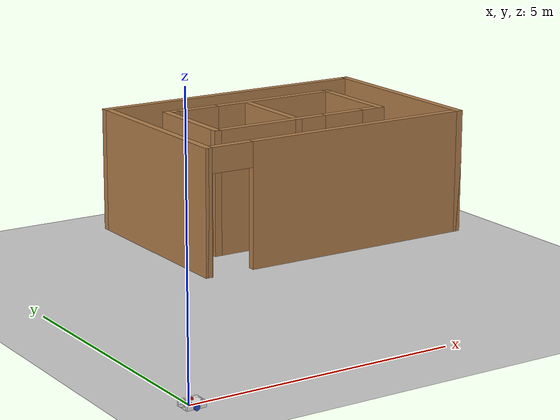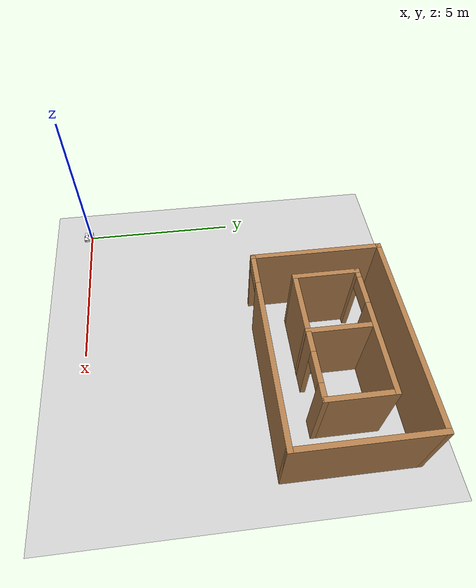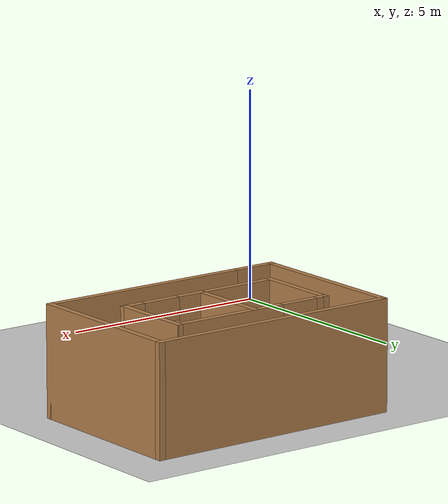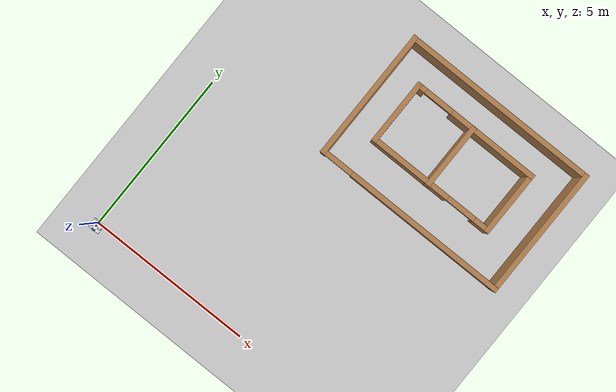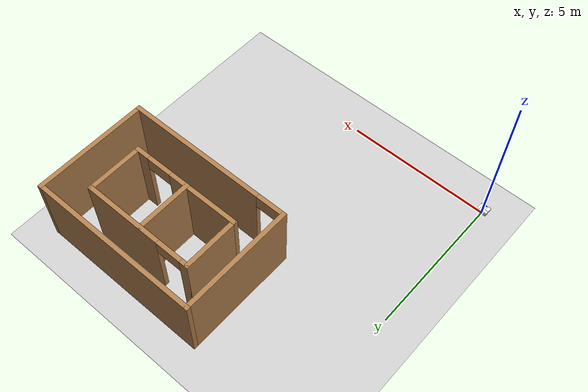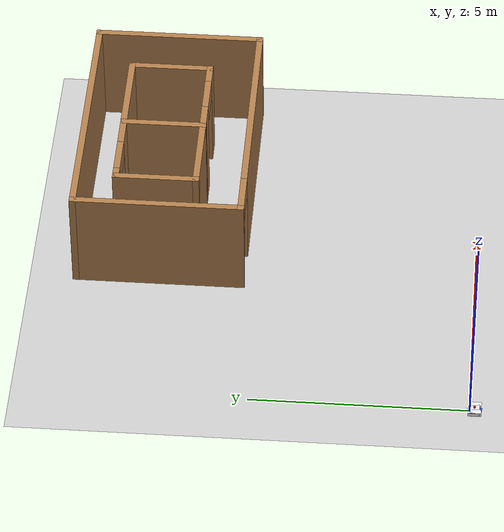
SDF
<sdf version="1.7">
 <world name="default">
  <light name="sun" type="directional">
   <pose>0 0 10 0 -0 0</pose>
   <diffuse>0.8 0.8 0.8 1</diffuse>
   <specular>0.2 0.2 0.2 1</specular>
   <attenuation>
    <range>1000</range>
    <constant>0.9</constant>
    <linear>0.01</linear>
    <quadratic>0.001</quadratic>
   </attenuation>
   <direction>-0.5 0.1 -0.9</direction>
   <spot><inner_angle>0</inner_angle><outer_angle>0</outer_angle><falloff>0</falloff></spot>
  </light>
  <model name="ground_plane">
   <static>1</static>
   <link name="link">
    <collision name="collision">
     <geometry><plane><normal>0 0 1</normal><size>100 100</size></plane></geometry>
     <surface>
      <contact><collide_bitmask>65535</collide_bitmask></contact>
      <friction><ode><mu>100</mu><mu2>50</mu2></ode></friction>
     </surface>
    </collision>
    <visual name="visual">
     <cast_shadows>0</cast_shadows>
     <geometry><plane><normal>0 0 1</normal><size>100 100</size></plane></geometry>
     <material>
      <script><uri>file://media/materials/scripts/gazebo.material</uri><name>Gazebo/Grey</name></script>
     </material>
    </visual>
   </link>
  </model>
  <gravity>0 0 -9.8</gravity>
  <magnetic_field>6e-06 2.3e-05 -4.2e-05</magnetic_field>
  <atmosphere type="adiabatic"/>
  <physics type="ode">
   <max_step_size>0.001</max_step_size>
   <real_time_factor>1</real_time_factor>
   <real_time_update_rate>1000</real_time_update_rate>
  </physics>
  <scene><ambient>0.4 0.4 0.4 1</ambient><background>0.7 0.7 0.7 1</background><shadows>1</shadows></scene>
  <audio><device>default</device></audio>
  <spherical_coordinates>
   <surface_model>EARTH_WGS84</surface_model>
   <latitude_deg>0</latitude_deg>
   <longitude_deg>0</longitude_deg>
   <elevation>0</elevation>
   <heading_deg>0</heading_deg>
  </spherical_coordinates>
  <model name="real">
   <pose>6.54997 7.85739 0 0 -0 0</pose>
   <link name="Wall_1">
    <collision name="Wall_1_Collision">
     <geometry><box><size>4 0.15 2.5</size></box></geometry>
     <pose>0 0 1.25 0 -0 0</pose>
    </collision>
    <visual name="Wall_1_Visual">
     <pose>0 0 1.25 0 -0 0</pose>
     <geometry><box><size>4 0.15 2.5</size></box></geometry>
     <material>
      <script><uri>file://media/materials/scripts/gazebo.material</uri><name>Gazebo/Wood</name></script>
      <ambient>1 1 1 1</ambient>
     </material>
     <meta><layer>0</layer></meta>
    </visual>
    <pose>-2.925 -0.5125 0 0 -0 -1.5708</pose>
   </link>
   <link name="Wall_10">
    <collision name="Wall_10_Collision">
     <geometry><box><size>2 0.15 2.5</size></box></geometry>
     <pose>0 0 1.25 0 -0 0</pose>
    </collision>
    <visual name="Wall_10_Visual">
     <pose>0 0 1.25 0 -0 0</pose>
     <geometry><box><size>2 0.15 2.5</size></box></geometry>
     <material>
      <script><uri>file://media/materials/scripts/gazebo.material</uri><name>Gazebo/Wood</name></script>
      <ambient>1 1 1 1</ambient>
     </material>
     <meta><layer>0</layer></meta>
    </visual>
    <pose>-2.055 -0.4125 0 0 -0 1.5708</pose>
   </link>
   <link name="Wall_13">
    <collision name="Wall_13_Collision">
     <geometry><box><size>2 0.15 2.5</size></box></geometry>
     <pose>0 0 1.25 0 -0 0</pose>
    </collision>
    <visual name="Wall_13_Visual">
     <pose>0 0 1.25 0 -0 0</pose>
     <geometry><box><size>2 0.15 2.5</size></box></geometry>
     <material>
      <script><uri>file://media/materials/scripts/gazebo.material</uri><name>Gazebo/Wood</name></script>
      <ambient>1 1 1 1</ambient>
     </material>
     <meta><layer>0</layer></meta>
    </visual>
    <pose>-0.202392 -0.418368 0 0 -0 -1.5708</pose>
   </link>
   <link name="Wall_2">
    <pose>0 -2.4375 0 0 -0 0</pose>
    <visual name="Wall_2_Visual_0">
     <pose>-2.93107 0 1.25 0 -0 0</pose>
     <geometry><box><size>0.137861 0.15 2.5</size></box></geometry>
     <material>
      <script><uri>file://media/materials/scripts/gazebo.material</uri><name>Gazebo/Wood</name></script>
      <ambient>1 1 1 1</ambient>
     </material>
     <meta><layer>0</layer></meta>
    </visual>
    <collision name="Wall_2_Collision_0">
     <geometry><box><size>0.137861 0.15 2.5</size></box></geometry>
     <pose>-2.93107 0 1.25 0 -0 0</pose>
    </collision>
    <visual name="Wall_2_Visual_1">
     <pose>0.518931 0 1.25 0 -0 0</pose>
     <geometry><box><size>4.96214 0.15 2.5</size></box></geometry>
     <material>
      <script><uri>file://media/materials/scripts/gazebo.material</uri><name>Gazebo/Wood</name></script>
      <ambient>1 1 1 1</ambient>
     </material>
     <meta><layer>0</layer></meta>
    </visual>
    <collision name="Wall_2_Collision_1">
     <geometry><box><size>4.96214 0.15 2.5</size></box></geometry>
     <pose>0.518931 0 1.25 0 -0 0</pose>
    </collision>
    <visual name="Wall_2_Visual_2">
     <pose>-2.41214 0 2.25 0 -0 0</pose>
     <geometry><box><size>0.9 0.15 0.5</size></box></geometry>
     <material>
      <script><uri>file://media/materials/scripts/gazebo.material</uri><name>Gazebo/Wood</name></script>
      <ambient>1 1 1 1</ambient>
     </material>
     <meta><layer>0</layer></meta>
    </visual>
    <collision name="Wall_2_Collision_2">
     <geometry><box><size>0.9 0.15 0.5</size></box></geometry>
     <pose>-2.41214 0 2.25 0 -0 0</pose>
    </collision>
   </link>
   <link name="Wall_3">
    <collision name="Wall_3_Collision">
     <geometry><box><size>4 0.15 2.5</size></box></geometry>
     <pose>0 0 1.25 0 -0 0</pose>
    </collision>
    <visual name="Wall_3_Visual">
     <pose>0 0 1.25 0 -0 0</pose>
     <geometry><box><size>4 0.15 2.5</size></box></geometry>
     <material>
      <script><uri>file://media/materials/scripts/gazebo.material</uri><name>Gazebo/Wood</name></script>
      <ambient>1 1 1 1</ambient>
     </material>
     <meta><layer>0</layer></meta>
    </visual>
    <pose>2.925 -0.5125 0 0 -0 1.5708</pose>
   </link>
   <link name="Wall_4">
    <collision name="Wall_4_Collision">
     <geometry><box><size>6 0.15 2.5</size></box></geometry>
     <pose>0 0 1.25 0 -0 0</pose>
    </collision>
    <visual name="Wall_4_Visual">
     <pose>0 0 1.25 0 -0 0</pose>
     <geometry><box><size>6 0.15 2.5</size></box></geometry>
     <material>
      <script><uri>file://media/materials/scripts/gazebo.material</uri><name>Gazebo/Wood</name></script>
      <ambient>1 1 1 1</ambient>
     </material>
     <meta><layer>0</layer></meta>
    </visual>
    <pose>0 1.4125 0 0 -0 3.14159</pose>
   </link>
   <link name="Wall_7">
    <pose>-0.13 0.5125 0 0 -0 0</pose>
    <visual name="Wall_7_Visual_0">
     <pose>-1.84107 0 1.25 0 -0 0</pose>
     <geometry><box><size>0.317861 0.15 2.5</size></box></geometry>
     <material>
      <script><uri>file://media/materials/scripts/gazebo.material</uri><name>Gazebo/Wood</name></script>
      <ambient>1 1 1 1</ambient>
     </material>
     <meta><layer>0</layer></meta>
    </visual>
    <collision name="Wall_7_Collision_0">
     <geometry><box><size>0.317861 0.15 2.5</size></box></geometry>
     <pose>-1.84107 0 1.25 0 -0 0</pose>
    </collision>
    <visual name="Wall_7_Visual_1">
     <pose>0.608931 0 1.25 0 -0 0</pose>
     <geometry><box><size>2.78214 0.15 2.5</size></box></geometry>
     <material>
      <script><uri>file://media/materials/scripts/gazebo.material</uri><name>Gazebo/Wood</name></script>
      <ambient>1 1 1 1</ambient>
     </material>
     <meta><layer>0</layer></meta>
    </visual>
    <collision name="Wall_7_Collision_1">
     <geometry><box><size>2.78214 0.15 2.5</size></box></geometry>
     <pose>0.608931 0 1.25 0 -0 0</pose>
    </collision>
    <visual name="Wall_7_Visual_2">
     <pose>-1.23214 0 2.25 0 -0 0</pose>
     <geometry><box><size>0.9 0.15 0.5</size></box></geometry>
     <material>
      <script><uri>file://media/materials/scripts/gazebo.material</uri><name>Gazebo/Wood</name></script>
      <ambient>1 1 1 1</ambient>
     </material>
     <meta><layer>0</layer></meta>
    </visual>
    <collision name="Wall_7_Collision_2">
     <geometry><box><size>0.9 0.15 0.5</size></box></geometry>
     <pose>-1.23214 0 2.25 0 -0 0</pose>
    </collision>
   </link>
   <link name="Wall_8">
    <collision name="Wall_8_Collision">
     <geometry><box><size>2 0.15 2.5</size></box></geometry>
     <pose>0 0 1.25 0 -0 0</pose>
    </collision>
    <visual name="Wall_8_Visual">
     <pose>0 0 1.25 0 -0 0</pose>
     <geometry><box><size>2 0.15 2.5</size></box></geometry>
     <material>
      <script><uri>file://media/materials/scripts/gazebo.material</uri><name>Gazebo/Wood</name></script>
      <ambient>1 1 1 1</ambient>
     </material>
     <meta><layer>0</layer></meta>
    </visual>
    <pose>1.795 -0.4125 0 0 -0 -1.5708</pose>
   </link>
   <link name="Wall_9">
    <pose>-0.13 -1.3375 0 0 -0 3.14159</pose>
    <visual name="Wall_9_Visual_0">
     <pose>-1.73393 0 1.25 0 -0 0</pose>
     <geometry><box><size>0.532139 0.15 2.5</size></box></geometry>
     <material>
      <script><uri>file://media/materials/scripts/gazebo.material</uri><name>Gazebo/Wood</name></script>
      <ambient>1 1 1 1</ambient>
     </material>
     <meta><layer>0</layer></meta>
    </visual>
    <collision name="Wall_9_Collision_0">
     <geometry><box><size>0.532139 0.15 2.5</size></box></geometry>
     <pose>-1.73393 0 1.25 0 -0 0</pose>
    </collision>
    <visual name="Wall_9_Visual_1">
     <pose>0.716069 0 1.25 0 -0 0</pose>
     <geometry><box><size>2.56786 0.15 2.5</size></box></geometry>
     <material>
      <script><uri>file://media/materials/scripts/gazebo.material</uri><name>Gazebo/Wood</name></script>
      <ambient>1 1 1 1</ambient>
     </material>
     <meta><layer>0</layer></meta>
    </visual>
    <collision name="Wall_9_Collision_1">
     <geometry><box><size>2.56786 0.15 2.5</size></box></geometry>
     <pose>0.716069 0 1.25 0 -0 0</pose>
    </collision>
    <visual name="Wall_9_Visual_2">
     <pose>-1.01786 0 2.25 0 -0 0</pose>
     <geometry><box><size>0.9 0.15 0.5</size></box></geometry>
     <material>
      <script><uri>file://media/materials/scripts/gazebo.material</uri><name>Gazebo/Wood</name></script>
      <ambient>1 1 1 1</ambient>
     </material>
     <meta><layer>0</layer></meta>
    </visual>
    <collision name="Wall_9_Collision_2">
     <geometry><box><size>0.9 0.15 0.5</size></box></geometry>
     <pose>-1.01786 0 2.25 0 -0 0</pose>
    </collision>
   </link>
   <static>1</static>
  </model>
  <model name="my_bot">
   <link name="base_link">
    <inertial>
     <pose>0 0 0.068576 0 -0 0</pose>
     <mass>2</mass>
     <inertia>
      <ixx>0.0151444</ixx>
      <ixy>0</ixy>
      <ixz>4.75842e-19</ixz>
      <iyy>0.0296719</iyy>
      <iyz>-2.71051e-20</iyz>
      <izz>0.0391488</izz>
     </inertia>
    </inertial>
    <collision name="base_link_fixed_joint_lump__chassis_collision">
     <pose>0 0 0.075 0 -0 0</pose>
     <geometry><box><size>0.35 0.229 0.105</size></box></geometry>
    </collision>
    <collision name="base_link_fixed_joint_lump__caster1_wheel_collision_1">
     <pose>-0.13 0.08 0.02538 0 -0 0</pose>
     <geometry><sphere><radius>0.025</radius></sphere></geometry>
     <surface><friction><ode><mu>0.005</mu><mu2>0.005</mu2></ode></friction></surface>
    </collision>
    <collision name="base_link_fixed_joint_lump__caster2_wheel_collision_2">
     <pose>-0.13 -0.08 0.02538 0 -0 0</pose>
     <geometry><sphere><radius>0.025</radius></sphere></geometry>
     <surface><friction><ode><mu>0.005</mu><mu2>0.005</mu2></ode></friction></surface>
    </collision>
    <collision name="base_link_fixed_joint_lump__caster3_wheel_collision_3">
     <pose>0.13 -0.08 0.02538 0 -0 0</pose>
     <geometry><sphere><radius>0.025</radius></sphere></geometry>
     <surface><friction><ode><mu>0.005</mu><mu2>0.005</mu2></ode></friction></surface>
    </collision>
    <collision name="base_link_fixed_joint_lump__caster_wheel_collision_4">
     <pose>0.13 0.08 0.02538 0 -0 0</pose>
     <geometry><sphere><radius>0.025</radius></sphere></geometry>
     <surface><friction><ode><mu>0.005</mu><mu2>0.005</mu2></ode></friction></surface>
    </collision>
    <collision name="base_link_fixed_joint_lump__chassis1_collision_5">
     <pose>0.1175 0 0.075 0 -0 0</pose>
     <geometry><box><size>0.115 0.3 0.105</size></box></geometry>
    </collision>
    <collision name="base_link_fixed_joint_lump__chassis2_collision_6">
     <pose>-0.1175 0 0.075 0 -0 0</pose>
     <geometry><box><size>0.115 0.3 0.105</size></box></geometry>
    </collision>
    <collision name="base_link_fixed_joint_lump__laser_frame_collision_7">
     <pose>0 0 0.145 0 -0 0</pose>
     <geometry><cylinder><length>0.04</length><radius>0.025</radius></cylinder></geometry>
    </collision>
    <visual name="base_link_fixed_joint_lump__chassis_visual">
     <pose>0 0 0.075 0 -0 0</pose>
     <geometry><box><size>0.35 0.229 0.105</size></box></geometry>
     <material>
      <script><name>Gazebo/White</name><uri>file://media/materials/scripts/gazebo.material</uri></script>
     </material>
    </visual>
    <visual name="base_link_fixed_joint_lump__caster1_wheel_visual_1">
     <pose>-0.13 0.08 0.02538 0 -0 0</pose>
     <geometry><sphere><radius>0.025</radius></sphere></geometry>
     <material>
      <script><name>Gazebo/Black</name><uri>file://media/materials/scripts/gazebo.material</uri></script>
     </material>
    </visual>
    <visual name="base_link_fixed_joint_lump__caster2_wheel_visual_2">
     <pose>-0.13 -0.08 0.02538 0 -0 0</pose>
     <geometry><sphere><radius>0.025</radius></sphere></geometry>
     <material>
      <script><name>Gazebo/Black</name><uri>file://media/materials/scripts/gazebo.material</uri></script>
     </material>
    </visual>
    <visual name="base_link_fixed_joint_lump__caster3_wheel_visual_3">
     <pose>0.13 -0.08 0.02538 0 -0 0</pose>
     <geometry><sphere><radius>0.025</radius></sphere></geometry>
     <material>
      <script><name>Gazebo/Black</name><uri>file://media/materials/scripts/gazebo.material</uri></script>
     </material>
    </visual>
    <visual name="base_link_fixed_joint_lump__caster_wheel_visual_4">
     <pose>0.13 0.08 0.02538 0 -0 0</pose>
     <geometry><sphere><radius>0.025</radius></sphere></geometry>
     <material>
      <script><name>Gazebo/Black</name><uri>file://media/materials/scripts/gazebo.material</uri></script>
     </material>
    </visual>
    <visual name="base_link_fixed_joint_lump__chassis1_visual_5">
     <pose>0.1175 0 0.075 0 -0 0</pose>
     <geometry><box><size>0.115 0.3 0.105</size></box></geometry>
     <material>
      <script><name>Gazebo/White</name><uri>file://media/materials/scripts/gazebo.material</uri></script>
     </material>
    </visual>
    <visual name="base_link_fixed_joint_lump__chassis2_visual_6">
     <pose>-0.1175 0 0.075 0 -0 0</pose>
     <geometry><box><size>0.115 0.3 0.105</size></box></geometry>
     <material>
      <script><name>Gazebo/White</name><uri>file://media/materials/scripts/gazebo.material</uri></script>
     </material>
    </visual>
    <visual name="base_link_fixed_joint_lump__laser_frame_visual_7">
     <pose>0 0 0.145 0 -0 0</pose>
     <geometry><cylinder><length>0.04</length><radius>0.025</radius></cylinder></geometry>
     <material>
      <script><name>Gazebo/Red</name><uri>file://media/materials/scripts/gazebo.material</uri></script>
     </material>
    </visual>
    <sensor name="laser" type="ray">
     <visualize>0</visualize>
     <update_rate>10</update_rate>
     <ray>
      <scan>
       <horizontal>
        <samples>360</samples>
        <min_angle>-3.14</min_angle>
        <max_angle>3.14</max_angle>
        <resolution>1</resolution>
       </horizontal>
       <vertical><samples>1</samples><min_angle>0</min_angle><max_angle>0</max_angle></vertical>
      </scan>
      <range><min>0.1</min><max>12</max></range>
     </ray>
     <plugin name="laser_controller" filename="libgazebo_ros_ray_sensor.so">
      <ros><argument>~/out:=scan</argument></ros>
      <output_type>sensor_msgs/LaserScan</output_type>
      <frame_name>laser_frame</frame_name>
     </plugin>
     <pose>0 0 0.145 0 -0 0</pose>
    </sensor>
   </link>
   <joint name="left_wheel_joint" type="revolute">
    <pose relative_to="base_link">0 0.14 0.050375 -1.5708 0 0</pose>
    <parent>base_link</parent>
    <child>left_wheel</child>
    <axis>
     <xyz>0 0 1</xyz>
     <limit><lower>-1e+16</lower><upper>1e+16</upper></limit>
     <dynamics><spring_reference>0</spring_reference><spring_stiffness>0</spring_stiffness></dynamics>
    </axis>
   </joint>
   <link name="left_wheel">
    <pose relative_to="left_wheel_joint">0 0 0 0 -0 0</pose>
    <inertial>
     <mass>0.1</mass>
     <inertia>
      <ixx>8.50333e-05</ixx>
      <ixy>0</ixy>
      <ixz>0</ixz>
      <iyy>8.50333e-05</iyy>
      <iyz>0</iyz>
      <izz>0.000125</izz>
     </inertia>
    </inertial>
    <collision name="left_wheel_collision">
     <geometry><cylinder><length>0.052</length><radius>0.05</radius></cylinder></geometry>
    </collision>
    <visual name="left_wheel_visual">
     <geometry><cylinder><length>0.0503752</length><radius>0.05</radius></cylinder></geometry>
     <material>
      <script><name>Gazebo/Blue</name><uri>file://media/materials/scripts/gazebo.material</uri></script>
     </material>
    </visual>
   </link>
   <joint name="right_wheel_joint" type="revolute">
    <pose relative_to="base_link">0 -0.14 0.050375 1.5708 -0 0</pose>
    <parent>base_link</parent>
    <child>right_wheel</child>
    <axis>
     <xyz>0 0 -1</xyz>
     <limit><lower>-1e+16</lower><upper>1e+16</upper></limit>
     <dynamics><spring_reference>0</spring_reference><spring_stiffness>0</spring_stiffness></dynamics>
    </axis>
   </joint>
   <link name="right_wheel">
    <pose relative_to="right_wheel_joint">0 0 0 0 -0 0</pose>
    <inertial>
     <mass>0.1</mass>
     <inertia>
      <ixx>8.50333e-05</ixx>
      <ixy>0</ixy>
      <ixz>0</ixz>
      <iyy>8.50333e-05</iyy>
      <iyz>0</iyz>
      <izz>0.000125</izz>
     </inertia>
    </inertial>
    <collision name="right_wheel_collision">
     <geometry><cylinder><length>0.052</length><radius>0.05</radius></cylinder></geometry>
    </collision>
    <visual name="right_wheel_visual">
     <geometry><cylinder><length>0.052</length><radius>0.05</radius></cylinder></geometry>
     <material>
      <script><name>Gazebo/Blue</name><uri>file://media/materials/scripts/gazebo.material</uri></script>
     </material>
    </visual>
   </link>
   <static>0</static>
   <plugin name="diff_drive" filename="libgazebo_ros_diff_drive.so">
    <left_joint>left_wheel_joint</left_joint>
    <right_joint>right_wheel_joint</right_joint>
    <wheel_separation>0.283</wheel_separation>
    <wheel_diameter>0.05</wheel_diameter>
    <max_wheel_torque>200</max_wheel_torque>
    <max_wheel_acceleration>10.0</max_wheel_acceleration>
    <odometry_frame>odom</odometry_frame>
    <robot_base_frame>base_link</robot_base_frame>
    <publish_odom>1</publish_odom>
    <publish_odom_tf>1</publish_odom_tf>
    <publish_wheel_tf>1</publish_wheel_tf>
   </plugin>
   <pose>-0.000611 -0.097041 -0.000384 4.7e-05 -0 -0.000177</pose>
  </model>
 </world>
</sdf>
